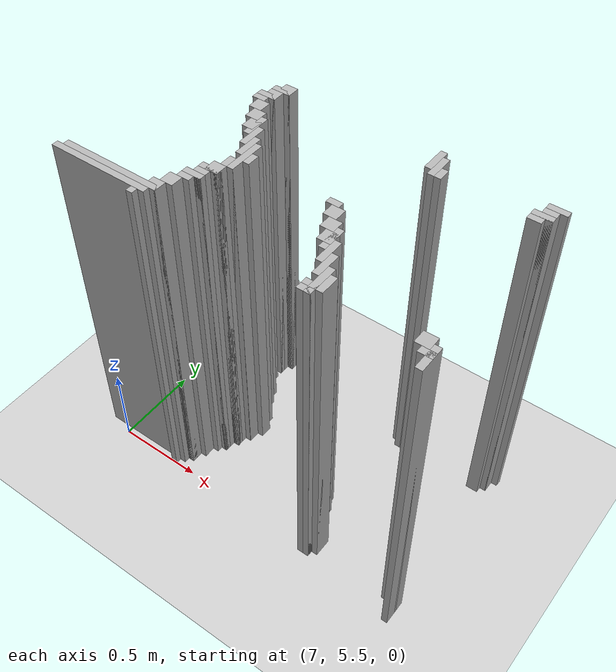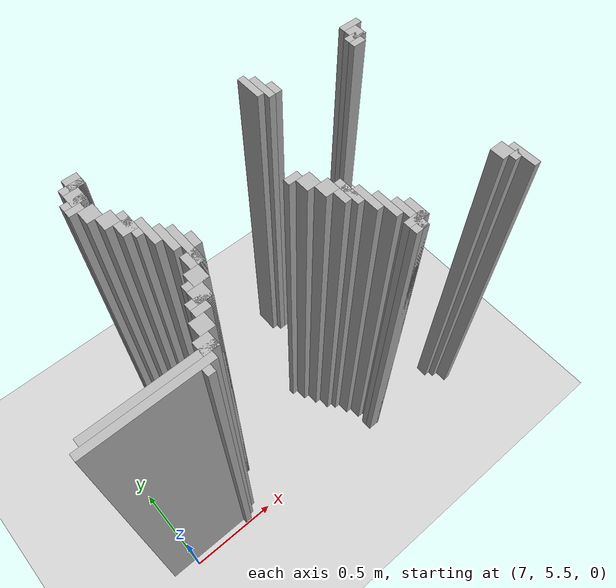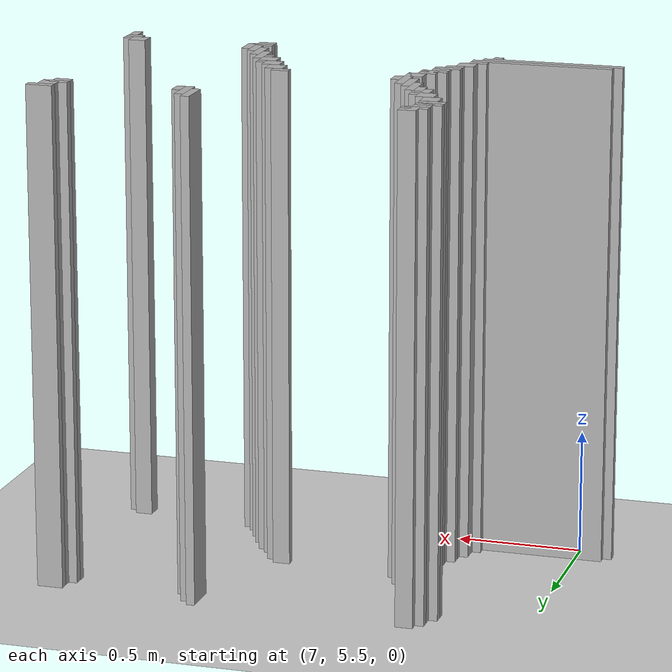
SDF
<sdf version="1.6">
 <world name="slam_world">
  <model name="ground_plane">
   <static>true</static>
   <link name="link">
    <collision name="collision">
     <geometry><plane><normal>0 0 1</normal><size>100 100</size></plane></geometry>
    </collision>
    <visual name="visual">
     <geometry><plane><normal>0 0 1</normal><size>100 100</size></plane></geometry>
     <material>
      <ambient>0.8 0.8 0.8 1</ambient>
      <diffuse>0.8 0.8 0.8 1</diffuse>
      <specular>0.8 0.8 0.8 1</specular>
     </material>
    </visual>
   </link>
  </model>
  <model name="wall_3556">
   <static>true</static>
   <pose>7.447795823665893 6.508120649651972 1.0 0 0 0</pose>
   <link name="link">
    <collision name="collision">
     <geometry><box><size>0.06960556844547564 0.06960556844547564 2.0</size></box></geometry>
    </collision>
    <visual name="visual">
     <geometry><box><size>0.06960556844547564 0.06960556844547564 2.0</size></box></geometry>
     <material><ambient>0.5 0.5 0.5 1</ambient><diffuse>0.7 0.7 0.7 1</diffuse></material>
    </visual>
   </link>
  </model>
  <model name="wall_3557">
   <static>true</static>
   <pose>8.30046403712297 6.473317865429234 1.0 0 0 0</pose>
   <link name="link">
    <collision name="collision">
     <geometry><box><size>0.03480278422273782 0.13921113689095127 2.0</size></box></geometry>
    </collision>
    <visual name="visual">
     <geometry><box><size>0.03480278422273782 0.13921113689095127 2.0</size></box></geometry>
     <material><ambient>0.5 0.5 0.5 1</ambient><diffuse>0.7 0.7 0.7 1</diffuse></material>
    </visual>
   </link>
  </model>
  <model name="wall_3576">
   <static>true</static>
   <pose>7.430394431554524 6.490719257540603 1.0 0 0 0</pose>
   <link name="link">
    <collision name="collision">
     <geometry><box><size>0.10440835266821345 0.03480278422273782 2.0</size></box></geometry>
    </collision>
    <visual name="visual">
     <geometry><box><size>0.10440835266821345 0.03480278422273782 2.0</size></box></geometry>
     <material><ambient>0.5 0.5 0.5 1</ambient><diffuse>0.7 0.7 0.7 1</diffuse></material>
    </visual>
   </link>
  </model>
  <model name="wall_3577">
   <static>true</static>
   <pose>8.335266821345707 6.438515081206496 1.0 0 0 0</pose>
   <link name="link">
    <collision name="collision">
     <geometry><box><size>0.03480278422273782 0.13921113689095127 2.0</size></box></geometry>
    </collision>
    <visual name="visual">
     <geometry><box><size>0.03480278422273782 0.13921113689095127 2.0</size></box></geometry>
     <material><ambient>0.5 0.5 0.5 1</ambient><diffuse>0.7 0.7 0.7 1</diffuse></material>
    </visual>
   </link>
  </model>
  <model name="wall_3578">
   <static>true</static>
   <pose>8.892111368909513 6.490719257540603 1.0 0 0 0</pose>
   <link name="link">
    <collision name="collision">
     <geometry><box><size>0.10440835266821345 0.03480278422273782 2.0</size></box></geometry>
    </collision>
    <visual name="visual">
     <geometry><box><size>0.10440835266821345 0.03480278422273782 2.0</size></box></geometry>
     <material><ambient>0.5 0.5 0.5 1</ambient><diffuse>0.7 0.7 0.7 1</diffuse></material>
    </visual>
   </link>
  </model>
  <model name="wall_3591">
   <static>true</static>
   <pose>7.412993039443156 6.438515081206496 1.0 0 0 0</pose>
   <link name="link">
    <collision name="collision">
     <geometry><box><size>0.06960556844547564 0.06960556844547564 2.0</size></box></geometry>
    </collision>
    <visual name="visual">
     <geometry><box><size>0.06960556844547564 0.06960556844547564 2.0</size></box></geometry>
     <material><ambient>0.5 0.5 0.5 1</ambient><diffuse>0.7 0.7 0.7 1</diffuse></material>
    </visual>
   </link>
  </model>
  <model name="wall_3592">
   <static>true</static>
   <pose>8.874709976798144 6.438515081206496 1.0 0 0 0</pose>
   <link name="link">
    <collision name="collision">
     <geometry><box><size>0.06960556844547564 0.06960556844547564 2.0</size></box></geometry>
    </collision>
    <visual name="visual">
     <geometry><box><size>0.06960556844547564 0.06960556844547564 2.0</size></box></geometry>
     <material><ambient>0.5 0.5 0.5 1</ambient><diffuse>0.7 0.7 0.7 1</diffuse></material>
    </visual>
   </link>
  </model>
  <model name="wall_3603">
   <static>true</static>
   <pose>7.395591647331786 6.421113689095128 1.0 0 0 0</pose>
   <link name="link">
    <collision name="collision">
     <geometry><box><size>0.10440835266821345 0.03480278422273782 2.0</size></box></geometry>
    </collision>
    <visual name="visual">
     <geometry><box><size>0.10440835266821345 0.03480278422273782 2.0</size></box></geometry>
     <material><ambient>0.5 0.5 0.5 1</ambient><diffuse>0.7 0.7 0.7 1</diffuse></material>
    </visual>
   </link>
  </model>
  <model name="wall_3604">
   <static>true</static>
   <pose>8.370069605568444 6.403712296983758 1.0 0 0 0</pose>
   <link name="link">
    <collision name="collision">
     <geometry><box><size>0.03480278422273782 0.06960556844547564 2.0</size></box></geometry>
    </collision>
    <visual name="visual">
     <geometry><box><size>0.03480278422273782 0.06960556844547564 2.0</size></box></geometry>
     <material><ambient>0.5 0.5 0.5 1</ambient><diffuse>0.7 0.7 0.7 1</diffuse></material>
    </visual>
   </link>
  </model>
  <model name="wall_3605">
   <static>true</static>
   <pose>8.857308584686775 6.421113689095128 1.0 0 0 0</pose>
   <link name="link">
    <collision name="collision">
     <geometry><box><size>0.10440835266821345 0.03480278422273782 2.0</size></box></geometry>
    </collision>
    <visual name="visual">
     <geometry><box><size>0.10440835266821345 0.03480278422273782 2.0</size></box></geometry>
     <material><ambient>0.5 0.5 0.5 1</ambient><diffuse>0.7 0.7 0.7 1</diffuse></material>
    </visual>
   </link>
  </model>
  <model name="wall_3615">
   <static>true</static>
   <pose>7.378190255220417 6.386310904872389 1.0 0 0 0</pose>
   <link name="link">
    <collision name="collision">
     <geometry><box><size>0.06960556844547564 0.03480278422273782 2.0</size></box></geometry>
    </collision>
    <visual name="visual">
     <geometry><box><size>0.06960556844547564 0.03480278422273782 2.0</size></box></geometry>
     <material><ambient>0.5 0.5 0.5 1</ambient><diffuse>0.7 0.7 0.7 1</diffuse></material>
    </visual>
   </link>
  </model>
  <model name="wall_3616">
   <static>true</static>
   <pose>8.839907192575406 6.386310904872389 1.0 0 0 0</pose>
   <link name="link">
    <collision name="collision">
     <geometry><box><size>0.06960556844547564 0.03480278422273782 2.0</size></box></geometry>
    </collision>
    <visual name="visual">
     <geometry><box><size>0.06960556844547564 0.03480278422273782 2.0</size></box></geometry>
     <material><ambient>0.5 0.5 0.5 1</ambient><diffuse>0.7 0.7 0.7 1</diffuse></material>
    </visual>
   </link>
  </model>
  <model name="wall_3626">
   <static>true</static>
   <pose>7.412993039443156 6.334106728538282 1.0 0 0 0</pose>
   <link name="link">
    <collision name="collision">
     <geometry><box><size>0.06960556844547564 0.06960556844547564 2.0</size></box></geometry>
    </collision>
    <visual name="visual">
     <geometry><box><size>0.06960556844547564 0.06960556844547564 2.0</size></box></geometry>
     <material><ambient>0.5 0.5 0.5 1</ambient><diffuse>0.7 0.7 0.7 1</diffuse></material>
    </visual>
   </link>
  </model>
  <model name="wall_3648">
   <static>true</static>
   <pose>7.447795823665893 6.2645011600928076 1.0 0 0 0</pose>
   <link name="link">
    <collision name="collision">
     <geometry><box><size>0.06960556844547564 0.06960556844547564 2.0</size></box></geometry>
    </collision>
    <visual name="visual">
     <geometry><box><size>0.06960556844547564 0.06960556844547564 2.0</size></box></geometry>
     <material><ambient>0.5 0.5 0.5 1</ambient><diffuse>0.7 0.7 0.7 1</diffuse></material>
    </visual>
   </link>
  </model>
  <model name="wall_3661">
   <static>true</static>
   <pose>7.5 6.194895591647332 1.0 0 0 0</pose>
   <link name="link">
    <collision name="collision">
     <geometry><box><size>0.03480278422273782 0.13921113689095127 2.0</size></box></geometry>
    </collision>
    <visual name="visual">
     <geometry><box><size>0.03480278422273782 0.13921113689095127 2.0</size></box></geometry>
     <material><ambient>0.5 0.5 0.5 1</ambient><diffuse>0.7 0.7 0.7 1</diffuse></material>
    </visual>
   </link>
  </model>
  <model name="wall_3674">
   <static>true</static>
   <pose>7.48259860788863 6.194895591647332 1.0 0 0 0</pose>
   <link name="link">
    <collision name="collision">
     <geometry><box><size>0.06960556844547564 0.06960556844547564 2.0</size></box></geometry>
    </collision>
    <visual name="visual">
     <geometry><box><size>0.06960556844547564 0.06960556844547564 2.0</size></box></geometry>
     <material><ambient>0.5 0.5 0.5 1</ambient><diffuse>0.7 0.7 0.7 1</diffuse></material>
    </visual>
   </link>
  </model>
  <model name="wall_3687">
   <static>true</static>
   <pose>7.534802784222737 6.125290023201856 1.0 0 0 0</pose>
   <link name="link">
    <collision name="collision">
     <geometry><box><size>0.03480278422273782 0.13921113689095127 2.0</size></box></geometry>
    </collision>
    <visual name="visual">
     <geometry><box><size>0.03480278422273782 0.13921113689095127 2.0</size></box></geometry>
     <material><ambient>0.5 0.5 0.5 1</ambient><diffuse>0.7 0.7 0.7 1</diffuse></material>
    </visual>
   </link>
  </model>
  <model name="wall_3705">
   <static>true</static>
   <pose>7.569605568445476 6.05568445475638 1.0 0 0 0</pose>
   <link name="link">
    <collision name="collision">
     <geometry><box><size>0.03480278422273782 0.13921113689095127 2.0</size></box></geometry>
    </collision>
    <visual name="visual">
     <geometry><box><size>0.03480278422273782 0.13921113689095127 2.0</size></box></geometry>
     <material><ambient>0.5 0.5 0.5 1</ambient><diffuse>0.7 0.7 0.7 1</diffuse></material>
    </visual>
   </link>
  </model>
  <model name="wall_3718">
   <static>true</static>
   <pose>7.604408352668213 5.986078886310905 1.0 0 0 0</pose>
   <link name="link">
    <collision name="collision">
     <geometry><box><size>0.03480278422273782 0.2088167053364269 2.0</size></box></geometry>
    </collision>
    <visual name="visual">
     <geometry><box><size>0.03480278422273782 0.2088167053364269 2.0</size></box></geometry>
     <material><ambient>0.5 0.5 0.5 1</ambient><diffuse>0.7 0.7 0.7 1</diffuse></material>
    </visual>
   </link>
  </model>
  <model name="wall_3736">
   <static>true</static>
   <pose>7.6392111368909505 5.986078886310905 1.0 0 0 0</pose>
   <link name="link">
    <collision name="collision">
     <geometry><box><size>0.03480278422273782 0.06960556844547564 2.0</size></box></geometry>
    </collision>
    <visual name="visual">
     <geometry><box><size>0.03480278422273782 0.06960556844547564 2.0</size></box></geometry>
     <material><ambient>0.5 0.5 0.5 1</ambient><diffuse>0.7 0.7 0.7 1</diffuse></material>
    </visual>
   </link>
  </model>
  <model name="wall_3747">
   <static>true</static>
   <pose>8.109048723897912 5.968677494199536 1.0 0 0 0</pose>
   <link name="link">
    <collision name="collision">
     <geometry><box><size>0.06960556844547564 0.03480278422273782 2.0</size></box></geometry>
    </collision>
    <visual name="visual">
     <geometry><box><size>0.06960556844547564 0.03480278422273782 2.0</size></box></geometry>
     <material><ambient>0.5 0.5 0.5 1</ambient><diffuse>0.7 0.7 0.7 1</diffuse></material>
    </visual>
   </link>
  </model>
  <model name="wall_3759">
   <static>true</static>
   <pose>7.587006960556844 5.916473317865429 1.0 0 0 0</pose>
   <link name="link">
    <collision name="collision">
     <geometry><box><size>0.06960556844547564 0.06960556844547564 2.0</size></box></geometry>
    </collision>
    <visual name="visual">
     <geometry><box><size>0.06960556844547564 0.06960556844547564 2.0</size></box></geometry>
     <material><ambient>0.5 0.5 0.5 1</ambient><diffuse>0.7 0.7 0.7 1</diffuse></material>
    </visual>
   </link>
  </model>
  <model name="wall_3760">
   <static>true</static>
   <pose>8.14385150812065 5.916473317865429 1.0 0 0 0</pose>
   <link name="link">
    <collision name="collision">
     <geometry><box><size>0.06960556844547564 0.06960556844547564 2.0</size></box></geometry>
    </collision>
    <visual name="visual">
     <geometry><box><size>0.06960556844547564 0.06960556844547564 2.0</size></box></geometry>
     <material><ambient>0.5 0.5 0.5 1</ambient><diffuse>0.7 0.7 0.7 1</diffuse></material>
    </visual>
   </link>
  </model>
  <model name="wall_3778">
   <static>true</static>
   <pose>7.552204176334106 5.846867749419953 1.0 0 0 0</pose>
   <link name="link">
    <collision name="collision">
     <geometry><box><size>0.06960556844547564 0.06960556844547564 2.0</size></box></geometry>
    </collision>
    <visual name="visual">
     <geometry><box><size>0.06960556844547564 0.06960556844547564 2.0</size></box></geometry>
     <material><ambient>0.5 0.5 0.5 1</ambient><diffuse>0.7 0.7 0.7 1</diffuse></material>
    </visual>
   </link>
  </model>
  <model name="wall_3779">
   <static>true</static>
   <pose>8.178654292343387 5.846867749419953 1.0 0 0 0</pose>
   <link name="link">
    <collision name="collision">
     <geometry><box><size>0.06960556844547564 0.06960556844547564 2.0</size></box></geometry>
    </collision>
    <visual name="visual">
     <geometry><box><size>0.06960556844547564 0.06960556844547564 2.0</size></box></geometry>
     <material><ambient>0.5 0.5 0.5 1</ambient><diffuse>0.7 0.7 0.7 1</diffuse></material>
    </visual>
   </link>
  </model>
  <model name="wall_3791">
   <static>true</static>
   <pose>7.534802784222737 5.8294663573085845 1.0 0 0 0</pose>
   <link name="link">
    <collision name="collision">
     <geometry><box><size>0.10440835266821345 0.03480278422273782 2.0</size></box></geometry>
    </collision>
    <visual name="visual">
     <geometry><box><size>0.10440835266821345 0.03480278422273782 2.0</size></box></geometry>
     <material><ambient>0.5 0.5 0.5 1</ambient><diffuse>0.7 0.7 0.7 1</diffuse></material>
    </visual>
   </link>
  </model>
  <model name="wall_3792">
   <static>true</static>
   <pose>8.230858468677495 5.7772621809744775 1.0 0 0 0</pose>
   <link name="link">
    <collision name="collision">
     <geometry><box><size>0.03480278422273782 0.13921113689095127 2.0</size></box></geometry>
    </collision>
    <visual name="visual">
     <geometry><box><size>0.03480278422273782 0.13921113689095127 2.0</size></box></geometry>
     <material><ambient>0.5 0.5 0.5 1</ambient><diffuse>0.7 0.7 0.7 1</diffuse></material>
    </visual>
   </link>
  </model>
  <model name="wall_3804">
   <static>true</static>
   <pose>7.517401392111369 5.7772621809744775 1.0 0 0 0</pose>
   <link name="link">
    <collision name="collision">
     <geometry><box><size>0.06960556844547564 0.06960556844547564 2.0</size></box></geometry>
    </collision>
    <visual name="visual">
     <geometry><box><size>0.06960556844547564 0.06960556844547564 2.0</size></box></geometry>
     <material><ambient>0.5 0.5 0.5 1</ambient><diffuse>0.7 0.7 0.7 1</diffuse></material>
    </visual>
   </link>
  </model>
  <model name="wall_3805">
   <static>true</static>
   <pose>8.213457076566124 5.7772621809744775 1.0 0 0 0</pose>
   <link name="link">
    <collision name="collision">
     <geometry><box><size>0.06960556844547564 0.06960556844547564 2.0</size></box></geometry>
    </collision>
    <visual name="visual">
     <geometry><box><size>0.06960556844547564 0.06960556844547564 2.0</size></box></geometry>
     <material><ambient>0.5 0.5 0.5 1</ambient><diffuse>0.7 0.7 0.7 1</diffuse></material>
    </visual>
   </link>
  </model>
  <model name="wall_3816">
   <static>true</static>
   <pose>7.5 5.759860788863109 1.0 0 0 0</pose>
   <link name="link">
    <collision name="collision">
     <geometry><box><size>0.10440835266821345 0.03480278422273782 2.0</size></box></geometry>
    </collision>
    <visual name="visual">
     <geometry><box><size>0.10440835266821345 0.03480278422273782 2.0</size></box></geometry>
     <material><ambient>0.5 0.5 0.5 1</ambient><diffuse>0.7 0.7 0.7 1</diffuse></material>
    </visual>
   </link>
  </model>
  <model name="wall_3817">
   <static>true</static>
   <pose>8.265661252900232 5.707656612529002 1.0 0 0 0</pose>
   <link name="link">
    <collision name="collision">
     <geometry><box><size>0.03480278422273782 0.13921113689095127 2.0</size></box></geometry>
    </collision>
    <visual name="visual">
     <geometry><box><size>0.03480278422273782 0.13921113689095127 2.0</size></box></geometry>
     <material><ambient>0.5 0.5 0.5 1</ambient><diffuse>0.7 0.7 0.7 1</diffuse></material>
    </visual>
   </link>
  </model>
  <model name="wall_3826">
   <static>true</static>
   <pose>7.48259860788863 5.725058004640371 1.0 0 0 0</pose>
   <link name="link">
    <collision name="collision">
     <geometry><box><size>0.06960556844547564 0.03480278422273782 2.0</size></box></geometry>
    </collision>
    <visual name="visual">
     <geometry><box><size>0.06960556844547564 0.03480278422273782 2.0</size></box></geometry>
     <material><ambient>0.5 0.5 0.5 1</ambient><diffuse>0.7 0.7 0.7 1</diffuse></material>
    </visual>
   </link>
  </model>
  <model name="wall_3835">
   <static>true</static>
   <pose>7.447795823665893 5.672853828306264 1.0 0 0 0</pose>
   <link name="link">
    <collision name="collision">
     <geometry><box><size>0.06960556844547564 0.06960556844547564 2.0</size></box></geometry>
    </collision>
    <visual name="visual">
     <geometry><box><size>0.06960556844547564 0.06960556844547564 2.0</size></box></geometry>
     <material><ambient>0.5 0.5 0.5 1</ambient><diffuse>0.7 0.7 0.7 1</diffuse></material>
    </visual>
   </link>
  </model>
  <model name="wall_3836">
   <static>true</static>
   <pose>8.30046403712297 5.638051044083526 1.0 0 0 0</pose>
   <link name="link">
    <collision name="collision">
     <geometry><box><size>0.03480278422273782 0.13921113689095127 2.0</size></box></geometry>
    </collision>
    <visual name="visual">
     <geometry><box><size>0.03480278422273782 0.13921113689095127 2.0</size></box></geometry>
     <material><ambient>0.5 0.5 0.5 1</ambient><diffuse>0.7 0.7 0.7 1</diffuse></material>
    </visual>
   </link>
  </model>
  <model name="wall_3848">
   <static>true</static>
   <pose>7.412993039443156 5.603248259860789 1.0 0 0 0</pose>
   <link name="link">
    <collision name="collision">
     <geometry><box><size>0.06960556844547564 0.06960556844547564 2.0</size></box></geometry>
    </collision>
    <visual name="visual">
     <geometry><box><size>0.06960556844547564 0.06960556844547564 2.0</size></box></geometry>
     <material><ambient>0.5 0.5 0.5 1</ambient><diffuse>0.7 0.7 0.7 1</diffuse></material>
    </visual>
   </link>
  </model>
  <model name="wall_3849">
   <static>true</static>
   <pose>8.335266821345707 5.551044083526682 1.0 0 0 0</pose>
   <link name="link">
    <collision name="collision">
     <geometry><box><size>0.03480278422273782 0.17401392111368907 2.0</size></box></geometry>
    </collision>
    <visual name="visual">
     <geometry><box><size>0.03480278422273782 0.17401392111368907 2.0</size></box></geometry>
     <material><ambient>0.5 0.5 0.5 1</ambient><diffuse>0.7 0.7 0.7 1</diffuse></material>
    </visual>
   </link>
  </model>
  <model name="wall_3861">
   <static>true</static>
   <pose>7.16937354988399 5.58584686774942 1.0 0 0 0</pose>
   <link name="link">
    <collision name="collision">
     <geometry><box><size>0.5568445475638051 0.03480278422273782 2.0</size></box></geometry>
    </collision>
    <visual name="visual">
     <geometry><box><size>0.5568445475638051 0.03480278422273782 2.0</size></box></geometry>
     <material><ambient>0.5 0.5 0.5 1</ambient><diffuse>0.7 0.7 0.7 1</diffuse></material>
    </visual>
   </link>
  </model>
  <model name="wall_3862">
   <static>true</static>
   <pose>8.370069605568444 5.551044083526682 1.0 0 0 0</pose>
   <link name="link">
    <collision name="collision">
     <geometry><box><size>0.03480278422273782 0.10440835266821345 2.0</size></box></geometry>
    </collision>
    <visual name="visual">
     <geometry><box><size>0.03480278422273782 0.10440835266821345 2.0</size></box></geometry>
     <material><ambient>0.5 0.5 0.5 1</ambient><diffuse>0.7 0.7 0.7 1</diffuse></material>
    </visual>
   </link>
  </model>
  <model name="wall_3873">
   <static>true</static>
   <pose>7.134570765661253 5.551044083526682 1.0 0 0 0</pose>
   <link name="link">
    <collision name="collision">
     <geometry><box><size>0.5568445475638051 0.03480278422273782 2.0</size></box></geometry>
    </collision>
    <visual name="visual">
     <geometry><box><size>0.5568445475638051 0.03480278422273782 2.0</size></box></geometry>
     <material><ambient>0.5 0.5 0.5 1</ambient><diffuse>0.7 0.7 0.7 1</diffuse></material>
    </visual>
   </link>
  </model>
  <model name="wall_3874">
   <static>true</static>
   <pose>8.839907192575406 5.533642691415313 1.0 0 0 0</pose>
   <link name="link">
    <collision name="collision">
     <geometry><box><size>0.06960556844547564 0.06960556844547564 2.0</size></box></geometry>
    </collision>
    <visual name="visual">
     <geometry><box><size>0.06960556844547564 0.06960556844547564 2.0</size></box></geometry>
     <material><ambient>0.5 0.5 0.5 1</ambient><diffuse>0.7 0.7 0.7 1</diffuse></material>
    </visual>
   </link>
  </model>
  <model name="wall_3885">
   <static>true</static>
   <pose>7.360788863109049 5.516241299303944 1.0 0 0 0</pose>
   <link name="link">
    <collision name="collision">
     <geometry><box><size>0.03480278422273782 0.03480278422273782 2.0</size></box></geometry>
    </collision>
    <visual name="visual">
     <geometry><box><size>0.03480278422273782 0.03480278422273782 2.0</size></box></geometry>
     <material><ambient>0.5 0.5 0.5 1</ambient><diffuse>0.7 0.7 0.7 1</diffuse></material>
    </visual>
   </link>
  </model>
  <model name="wall_3886">
   <static>true</static>
   <pose>8.335266821345707 5.516241299303944 1.0 0 0 0</pose>
   <link name="link">
    <collision name="collision">
     <geometry><box><size>0.10440835266821345 0.03480278422273782 2.0</size></box></geometry>
    </collision>
    <visual name="visual">
     <geometry><box><size>0.10440835266821345 0.03480278422273782 2.0</size></box></geometry>
     <material><ambient>0.5 0.5 0.5 1</ambient><diffuse>0.7 0.7 0.7 1</diffuse></material>
    </visual>
   </link>
  </model>
  <model name="wall_3887">
   <static>true</static>
   <pose>8.892111368909513 5.464037122969837 1.0 0 0 0</pose>
   <link name="link">
    <collision name="collision">
     <geometry><box><size>0.03480278422273782 0.13921113689095127 2.0</size></box></geometry>
    </collision>
    <visual name="visual">
     <geometry><box><size>0.03480278422273782 0.13921113689095127 2.0</size></box></geometry>
     <material><ambient>0.5 0.5 0.5 1</ambient><diffuse>0.7 0.7 0.7 1</diffuse></material>
    </visual>
   </link>
  </model>
  <model name="wall_3900">
   <static>true</static>
   <pose>8.317865429234338 5.481438515081206 1.0 0 0 0</pose>
   <link name="link">
    <collision name="collision">
     <geometry><box><size>0.06960556844547564 0.03480278422273782 2.0</size></box></geometry>
    </collision>
    <visual name="visual">
     <geometry><box><size>0.06960556844547564 0.03480278422273782 2.0</size></box></geometry>
     <material><ambient>0.5 0.5 0.5 1</ambient><diffuse>0.7 0.7 0.7 1</diffuse></material>
    </visual>
   </link>
  </model>
  <model name="wall_3901">
   <static>true</static>
   <pose>8.874709976798144 5.481438515081206 1.0 0 0 0</pose>
   <link name="link">
    <collision name="collision">
     <geometry><box><size>0.06960556844547564 0.03480278422273782 2.0</size></box></geometry>
    </collision>
    <visual name="visual">
     <geometry><box><size>0.06960556844547564 0.03480278422273782 2.0</size></box></geometry>
     <material><ambient>0.5 0.5 0.5 1</ambient><diffuse>0.7 0.7 0.7 1</diffuse></material>
    </visual>
   </link>
  </model>
 </world>
</sdf>
